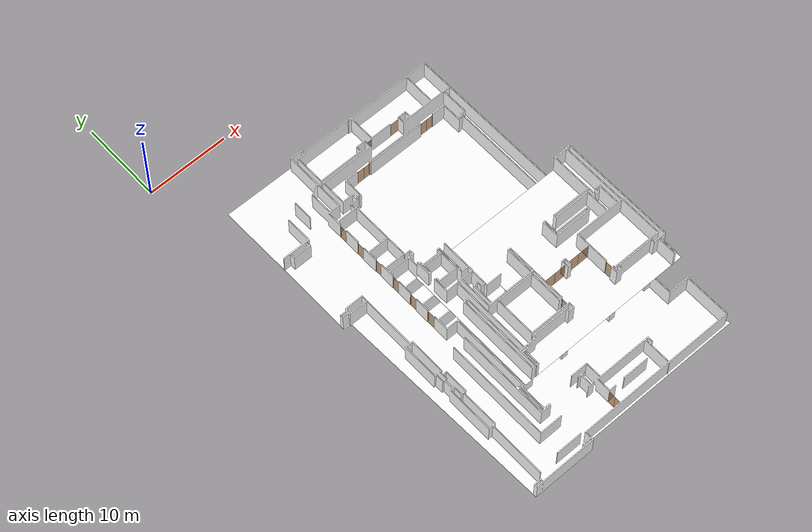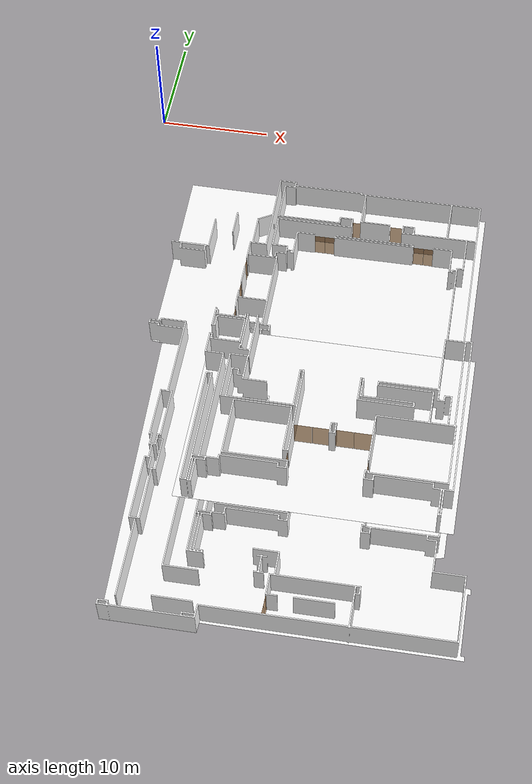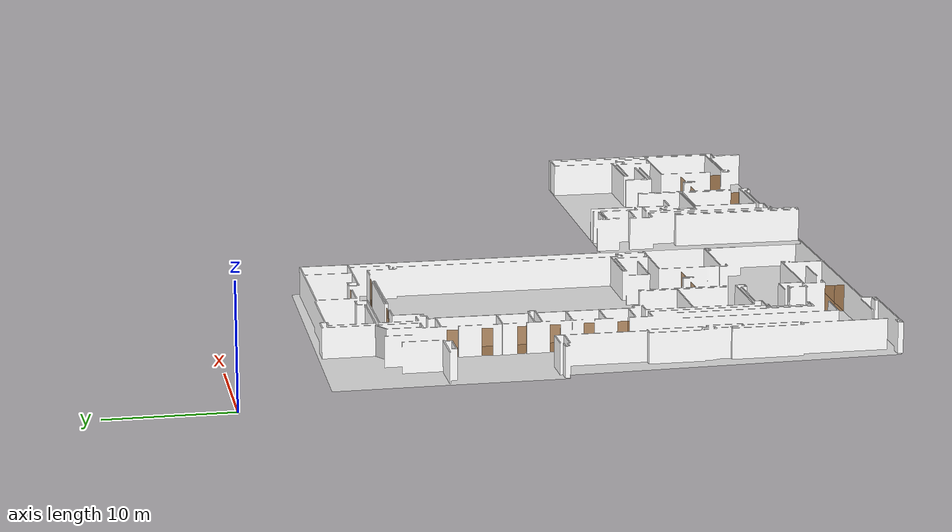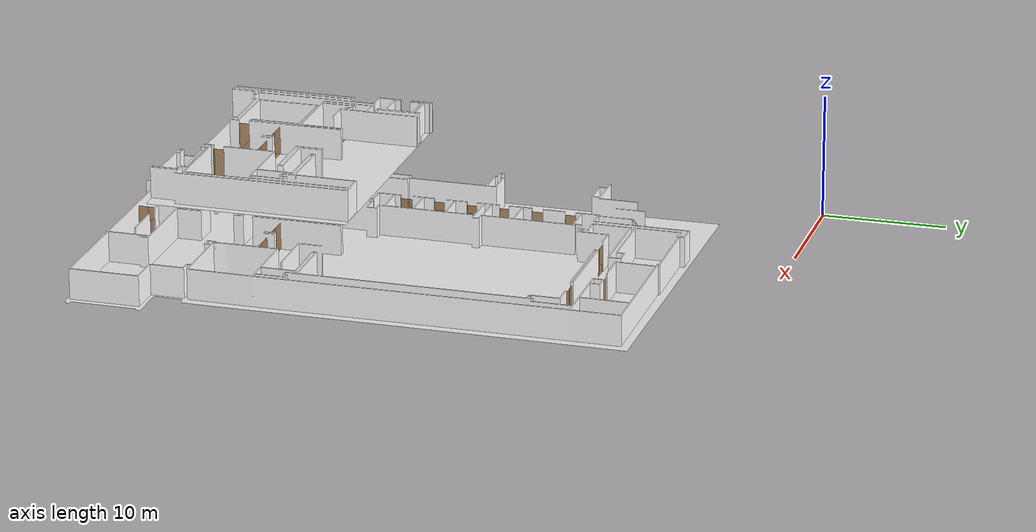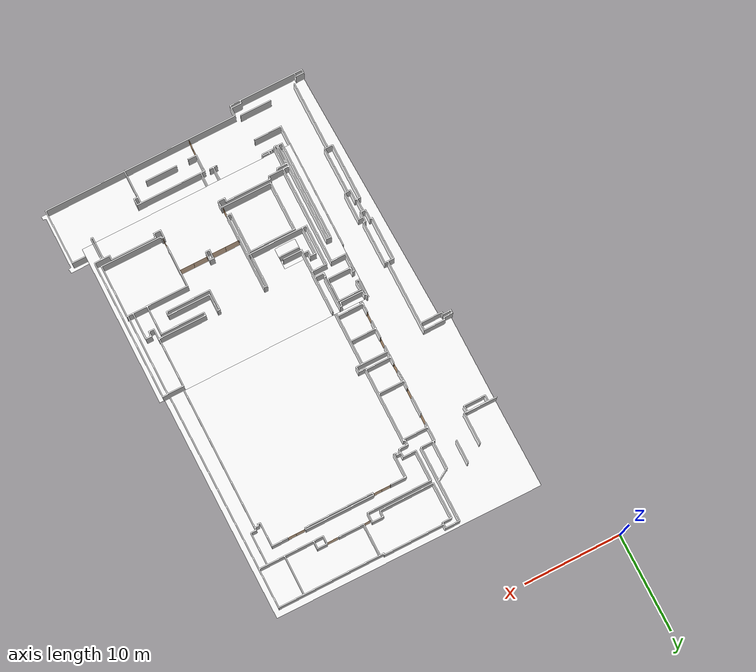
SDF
<sdf version="1.7">
 <world name="sim_world">
  <physics name="10ms" type="ode">
   <max_step_size>0.01</max_step_size>
   <real_time_factor>1.0</real_time_factor>
  </physics>
  <plugin filename="libgz-sim-physics-system.so" name="gz::sim::systems::Physics"/>
  <plugin filename="libgz-sim-user-commands-system.so" name="gz::sim::systems::UserCommands"/>
  <plugin filename="libgz-sim-scene-broadcaster-system.so" name="gz::sim::systems::SceneBroadcaster"/>
  <plugin filename="libdoor.so" name="door"/>
  <plugin filename="liblift.so" name="lift"/>
  <scene><ambient>1 1 1</ambient><background>0.8 0.8 0.8</background><grid>false</grid></scene>
  <light type="directional" name="sun">
   <pose>0 0 10 0 0 0</pose>
   <diffuse>1 1 1 1</diffuse>
   <specular>0.2 0.2 0.2 1</specular>
   <attenuation>
    <range>1000</range>
    <constant>0.09</constant>
    <linear>0.001</linear>
    <quadratic>0.001</quadratic>
   </attenuation>
   <direction>-0.5 0.1 -0.9</direction>
  </light>
  <model name="a11">
   <pose>20.60943080016063 -39.32168954483776 0.0 0 0 3.141592653589793</pose>
   <link name="right">
    <pose>0.6776144886126376 0 1.11 0 0 0</pose>
    <visual name="right_visual">
     <geometry><box><size>1.3452289772252752 0.03 2.2</size></box></geometry>
     <material>
      <ambient>0.5 0.25 0 0.6</ambient>
      <diffuse>0.5 0.25 0 0.6</diffuse>
      <pbr><metal><metalness>0.0</metalness></metal></pbr>
     </material>
    </visual>
    <collision name="right_collision">
     <geometry><box><size>1.3452289772252752 0.03 2.2</size></box></geometry>
     <surface><contact><collide_bitmask>0x02</collide_bitmask></contact></surface>
    </collision>
    <inertial>
     <mass>50.0</mass>
     <inertia><ixx>20.17041666666667</ixx><iyy>27.706837504860673</iyy><izz>7.543920838194</izz></inertia>
    </inertial>
   </link>
   <joint name="right_joint" type="revolute">
    <parent>world</parent>
    <child>right</child>
    <axis><xyz>0 0 -1</xyz><limit><lower>0</lower><upper>1.57</upper></limit></axis>
    <pose>0.6776144886126376 0 0 0 0 0</pose>
   </joint>
   <link name="left">
    <pose>-0.6776144886126376 0 1.11 0 0 0</pose>
    <visual name="left_visual">
     <geometry><box><size>1.3452289772252752 0.03 2.2</size></box></geometry>
     <material>
      <ambient>0.5 0.25 0 0.6</ambient>
      <diffuse>0.5 0.25 0 0.6</diffuse>
      <pbr><metal><metalness>0.0</metalness></metal></pbr>
     </material>
    </visual>
    <collision name="left_collision">
     <geometry><box><size>1.3452289772252752 0.03 2.2</size></box></geometry>
     <surface><contact><collide_bitmask>0x02</collide_bitmask></contact></surface>
    </collision>
    <inertial>
     <mass>50.0</mass>
     <inertia><ixx>20.17041666666667</ixx><iyy>27.706837504860673</iyy><izz>7.543920838194</izz></inertia>
    </inertial>
   </link>
   <joint name="left_joint" type="revolute">
    <parent>world</parent>
    <child>left</child>
    <axis><xyz>0 0 -1</xyz><limit><lower>-1.57</lower><upper>0</upper></limit></axis>
    <pose>-0.6776144886126376 0 0 0 0 0</pose>
   </joint>
   <plugin name="register_component" filename="libregister_component.so">
    <component name="Door">
     <v_max_door>0.5</v_max_door>
     <a_max_door>0.3</a_max_door>
     <a_nom_door>0.15</a_nom_door>
     <dx_min_door>0.01</dx_min_door>
     <f_max_door>500.0</f_max_door>
     <ros_interface>true</ros_interface>
     <door name="a11" type="DoubleSwingDoor" left_joint_name="left_joint" right_joint_name="right_joint"/>
    </component>
   </plugin>
  </model>
  <model name="a12">
   <pose>23.86846369005196 -39.305558000339644 0.0 0 0 3.141592653589793</pose>
   <link name="right">
    <pose>0.669548716363578 0 1.11 0 0 0</pose>
    <visual name="right_visual">
     <geometry><box><size>1.329097432727156 0.03 2.2</size></box></geometry>
     <material>
      <ambient>0.5 0.25 0 0.6</ambient>
      <diffuse>0.5 0.25 0 0.6</diffuse>
      <pbr><metal><metalness>0.0</metalness></metal></pbr>
     </material>
    </visual>
    <collision name="right_collision">
     <geometry><box><size>1.329097432727156 0.03 2.2</size></box></geometry>
     <surface><contact><collide_bitmask>0x02</collide_bitmask></contact></surface>
    </collision>
    <inertial>
     <mass>50.0</mass>
     <inertia><ixx>20.17041666666667</ixx><iyy>27.52708327367466</iyy><izz>7.364166607007989</izz></inertia>
    </inertial>
   </link>
   <joint name="right_joint" type="revolute">
    <parent>world</parent>
    <child>right</child>
    <axis><xyz>0 0 -1</xyz><limit><lower>0</lower><upper>1.57</upper></limit></axis>
    <pose>0.669548716363578 0 0 0 0 0</pose>
   </joint>
   <link name="left">
    <pose>-0.669548716363578 0 1.11 0 0 0</pose>
    <visual name="left_visual">
     <geometry><box><size>1.329097432727156 0.03 2.2</size></box></geometry>
     <material>
      <ambient>0.5 0.25 0 0.6</ambient>
      <diffuse>0.5 0.25 0 0.6</diffuse>
      <pbr><metal><metalness>0.0</metalness></metal></pbr>
     </material>
    </visual>
    <collision name="left_collision">
     <geometry><box><size>1.329097432727156 0.03 2.2</size></box></geometry>
     <surface><contact><collide_bitmask>0x02</collide_bitmask></contact></surface>
    </collision>
    <inertial>
     <mass>50.0</mass>
     <inertia><ixx>20.17041666666667</ixx><iyy>27.52708327367466</iyy><izz>7.364166607007989</izz></inertia>
    </inertial>
   </link>
   <joint name="left_joint" type="revolute">
    <parent>world</parent>
    <child>left</child>
    <axis><xyz>0 0 -1</xyz><limit><lower>-1.57</lower><upper>0</upper></limit></axis>
    <pose>-0.669548716363578 0 0 0 0 0</pose>
   </joint>
   <plugin name="register_component" filename="libregister_component.so">
    <component name="Door">
     <v_max_door>0.5</v_max_door>
     <a_max_door>0.3</a_max_door>
     <a_nom_door>0.15</a_nom_door>
     <dx_min_door>0.01</dx_min_door>
     <f_max_door>500.0</f_max_door>
     <ros_interface>true</ros_interface>
     <door name="a12" type="DoubleSwingDoor" left_joint_name="left_joint" right_joint_name="right_joint"/>
    </component>
   </plugin>
  </model>
  <model name="a1">
   <pose>20.398773313516152 -11.670276247472241 0.0 0 0 0.049594936428244724</pose>
   <link name="right">
    <pose>0 0 1.11 0 0 0</pose>
    <visual name="right_visual">
     <geometry><box><size>0.7358359396147773 0.03 2.2</size></box></geometry>
     <material>
      <ambient>0.5 0.25 0 0.6</ambient>
      <diffuse>0.5 0.25 0 0.6</diffuse>
      <pbr><metal><metalness>0.0</metalness></metal></pbr>
     </material>
    </visual>
    <collision name="right_collision">
     <geometry><box><size>0.7358359396147773 0.03 2.2</size></box></geometry>
     <surface><contact><collide_bitmask>0x02</collide_bitmask></contact></surface>
    </collision>
    <inertial>
     <mass>50.0</mass>
     <inertia><ixx>20.17041666666667</ixx><iyy>22.42272720845318</iyy><izz>2.2598105417865093</izz></inertia>
    </inertial>
   </link>
   <joint name="right_joint" type="prismatic">
    <parent>world</parent>
    <child>right</child>
    <axis>
     <xyz>1 0 0</xyz>
     <limit><lower>0.0</lower><upper>0.7458359396147773</upper><effort>500.0</effort></limit>
    </axis>
   </joint>
   <plugin name="register_component" filename="libregister_component.so">
    <component name="Door">
     <v_max_door>0.2</v_max_door>
     <a_max_door>0.2</a_max_door>
     <a_nom_door>0.08</a_nom_door>
     <dx_min_door>0.001</dx_min_door>
     <f_max_door>100.0</f_max_door>
     <ros_interface>true</ros_interface>
     <door name="a1" type="SlidingDoor" left_joint_name="empty_joint" right_joint_name="right_joint"/>
    </component>
   </plugin>
  </model>
  <model name="a2">
   <pose>23.973344334915918 -11.670020191210366 0.0 0 0 3.141592653589793</pose>
   <link name="right">
    <pose>0 0 1.11 0 0 0</pose>
    <visual name="right_visual">
     <geometry><box><size>1.0486902203479553 0.03 2.2</size></box></geometry>
     <material>
      <ambient>0.5 0.25 0 0.6</ambient>
      <diffuse>0.5 0.25 0 0.6</diffuse>
      <pbr><metal><metalness>0.0</metalness></metal></pbr>
     </material>
    </visual>
    <collision name="right_collision">
     <geometry><box><size>1.0486902203479553 0.03 2.2</size></box></geometry>
     <surface><contact><collide_bitmask>0x02</collide_bitmask></contact></surface>
    </collision>
    <inertial>
     <mass>50.0</mass>
     <inertia><ixx>20.17041666666667</ixx><iyy>24.74896324272268</iyy><izz>4.586046576056012</izz></inertia>
    </inertial>
   </link>
   <joint name="right_joint" type="prismatic">
    <parent>world</parent>
    <child>right</child>
    <axis>
     <xyz>1 0 0</xyz>
     <limit><lower>0.0</lower><upper>1.0586902203479553</upper><effort>500.0</effort></limit>
    </axis>
   </joint>
   <plugin name="register_component" filename="libregister_component.so">
    <component name="Door">
     <v_max_door>0.2</v_max_door>
     <a_max_door>0.2</a_max_door>
     <a_nom_door>0.08</a_nom_door>
     <dx_min_door>0.001</dx_min_door>
     <f_max_door>100.0</f_max_door>
     <ros_interface>true</ros_interface>
     <door name="a2" type="SlidingDoor" left_joint_name="empty_joint" right_joint_name="right_joint"/>
    </component>
   </plugin>
  </model>
  <model name="a4">
   <pose>17.793580088322372 -13.742181096059168 0.0 0 0 3.141592653589793</pose>
   <link name="right">
    <pose>0.4708234515224685 0 1.11 0 0 0</pose>
    <visual name="right_visual">
     <geometry><box><size>0.931646903044937 0.03 2.2</size></box></geometry>
     <material>
      <ambient>0.5 0.25 0 0.6</ambient>
      <diffuse>0.5 0.25 0 0.6</diffuse>
      <pbr><metal><metalness>0.0</metalness></metal></pbr>
     </material>
    </visual>
    <collision name="right_collision">
     <geometry><box><size>0.931646903044937 0.03 2.2</size></box></geometry>
     <surface><contact><collide_bitmask>0x02</collide_bitmask></contact></surface>
    </collision>
    <inertial>
     <mass>50.0</mass>
     <inertia><ixx>20.17041666666667</ixx><iyy>23.783191466471763</iyy><izz>3.620274799805093</izz></inertia>
    </inertial>
   </link>
   <joint name="right_joint" type="prismatic">
    <parent>world</parent>
    <child>right</child>
    <axis>
     <xyz>1 0 0</xyz>
     <limit><lower>0.0</lower><upper>0.941646903044937</upper><effort>500.0</effort></limit>
    </axis>
   </joint>
   <link name="left">
    <pose>-0.4708234515224685 0 1.11 0 0 0</pose>
    <visual name="left_visual">
     <geometry><box><size>0.931646903044937 0.03 2.2</size></box></geometry>
     <material>
      <ambient>0.5 0.25 0 0.6</ambient>
      <diffuse>0.5 0.25 0 0.6</diffuse>
      <pbr><metal><metalness>0.0</metalness></metal></pbr>
     </material>
    </visual>
    <collision name="left_collision">
     <geometry><box><size>0.931646903044937 0.03 2.2</size></box></geometry>
     <surface><contact><collide_bitmask>0x02</collide_bitmask></contact></surface>
    </collision>
    <inertial>
     <mass>50.0</mass>
     <inertia><ixx>20.17041666666667</ixx><iyy>23.783191466471763</iyy><izz>3.620274799805093</izz></inertia>
    </inertial>
   </link>
   <joint name="left_joint" type="prismatic">
    <parent>world</parent>
    <child>left</child>
    <axis>
     <xyz>1 0 0</xyz>
     <limit><lower>-0.941646903044937</lower><upper>0.0</upper><effort>500.0</effort></limit>
    </axis>
   </joint>
   <plugin name="register_component" filename="libregister_component.so">
    <component name="Door">
     <v_max_door>0.2</v_max_door>
     <a_max_door>0.2</a_max_door>
     <a_nom_door>0.08</a_nom_door>
     <dx_min_door>0.001</dx_min_door>
     <f_max_door>100.0</f_max_door>
     <ros_interface>true</ros_interface>
     <door name="a4" type="DoubleSlidingDoor" left_joint_name="left_joint" right_joint_name="right_joint"/>
    </component>
   </plugin>
  </model>
  <model name="c1">
   <pose>26.704619663456896 -13.72830284666555 0.0 0 0 0.0</pose>
   <link name="right">
    <pose>0.4459475856813233 0 1.11 0 0 0</pose>
    <visual name="right_visual">
     <geometry><box><size>0.8818951713626466 0.03 2.2</size></box></geometry>
     <material>
      <ambient>0.5 0.25 0 0.6</ambient>
      <diffuse>0.5 0.25 0 0.6</diffuse>
      <pbr><metal><metalness>0.0</metalness></metal></pbr>
     </material>
    </visual>
    <collision name="right_collision">
     <geometry><box><size>0.8818951713626466 0.03 2.2</size></box></geometry>
     <surface><contact><collide_bitmask>0x02</collide_bitmask></contact></surface>
    </collision>
    <inertial>
     <mass>50.0</mass>
     <inertia><ixx>20.17041666666667</ixx><iyy>23.407246221969803</iyy><izz>3.244329555303133</izz></inertia>
    </inertial>
   </link>
   <joint name="right_joint" type="prismatic">
    <parent>world</parent>
    <child>right</child>
    <axis>
     <xyz>1 0 0</xyz>
     <limit><lower>0.0</lower><upper>0.8918951713626466</upper><effort>500.0</effort></limit>
    </axis>
   </joint>
   <link name="left">
    <pose>-0.4459475856813233 0 1.11 0 0 0</pose>
    <visual name="left_visual">
     <geometry><box><size>0.8818951713626466 0.03 2.2</size></box></geometry>
     <material>
      <ambient>0.5 0.25 0 0.6</ambient>
      <diffuse>0.5 0.25 0 0.6</diffuse>
      <pbr><metal><metalness>0.0</metalness></metal></pbr>
     </material>
    </visual>
    <collision name="left_collision">
     <geometry><box><size>0.8818951713626466 0.03 2.2</size></box></geometry>
     <surface><contact><collide_bitmask>0x02</collide_bitmask></contact></surface>
    </collision>
    <inertial>
     <mass>50.0</mass>
     <inertia><ixx>20.17041666666667</ixx><iyy>23.407246221969803</iyy><izz>3.244329555303133</izz></inertia>
    </inertial>
   </link>
   <joint name="left_joint" type="prismatic">
    <parent>world</parent>
    <child>left</child>
    <axis>
     <xyz>1 0 0</xyz>
     <limit><lower>-0.8918951713626466</lower><upper>0.0</upper><effort>500.0</effort></limit>
    </axis>
   </joint>
   <plugin name="register_component" filename="libregister_component.so">
    <component name="Door">
     <v_max_door>0.2</v_max_door>
     <a_max_door>0.2</a_max_door>
     <a_nom_door>0.08</a_nom_door>
     <dx_min_door>0.001</dx_min_door>
     <f_max_door>100.0</f_max_door>
     <ros_interface>true</ros_interface>
     <door name="c1" type="DoubleSlidingDoor" left_joint_name="left_joint" right_joint_name="right_joint"/>
    </component>
   </plugin>
  </model>
  <model name="a44">
   <pose>18.740911440380934 -50.55692620338455 0.0 0 0 1.5337740013326813</pose>
   <link name="right">
    <pose>0.42890648406973847 0 1.11 0 0 0</pose>
    <visual name="right_visual">
     <geometry><box><size>0.8478129681394769 0.03 2.2</size></box></geometry>
     <material>
      <ambient>0.5 0.25 0 0.6</ambient>
      <diffuse>0.5 0.25 0 0.6</diffuse>
      <pbr><metal><metalness>0.0</metalness></metal></pbr>
     </material>
    </visual>
    <collision name="right_collision">
     <geometry><box><size>0.8478129681394769 0.03 2.2</size></box></geometry>
     <surface><contact><collide_bitmask>0x02</collide_bitmask></contact></surface>
    </collision>
    <inertial>
     <mass>50.0</mass>
     <inertia><ixx>20.17041666666667</ixx><iyy>23.161611787272793</iyy><izz>2.9986951206061243</izz></inertia>
    </inertial>
   </link>
   <joint name="right_joint" type="revolute">
    <parent>world</parent>
    <child>right</child>
    <axis><xyz>0 0 1</xyz><limit><lower>0</lower><upper>1.57</upper></limit></axis>
    <pose>0.42890648406973847 0 0 0 0 0</pose>
   </joint>
   <link name="left">
    <pose>-0.42890648406973847 0 1.11 0 0 0</pose>
    <visual name="left_visual">
     <geometry><box><size>0.8478129681394769 0.03 2.2</size></box></geometry>
     <material>
      <ambient>0.5 0.25 0 0.6</ambient>
      <diffuse>0.5 0.25 0 0.6</diffuse>
      <pbr><metal><metalness>0.0</metalness></metal></pbr>
     </material>
    </visual>
    <collision name="left_collision">
     <geometry><box><size>0.8478129681394769 0.03 2.2</size></box></geometry>
     <surface><contact><collide_bitmask>0x02</collide_bitmask></contact></surface>
    </collision>
    <inertial>
     <mass>50.0</mass>
     <inertia><ixx>20.17041666666667</ixx><iyy>23.161611787272793</iyy><izz>2.9986951206061243</izz></inertia>
    </inertial>
   </link>
   <joint name="left_joint" type="revolute">
    <parent>world</parent>
    <child>left</child>
    <axis><xyz>0 0 1</xyz><limit><lower>-1.57</lower><upper>0</upper></limit></axis>
    <pose>-0.42890648406973847 0 0 0 0 0</pose>
   </joint>
   <plugin name="register_component" filename="libregister_component.so">
    <component name="Door">
     <v_max_door>0.5</v_max_door>
     <a_max_door>0.3</a_max_door>
     <a_nom_door>0.15</a_nom_door>
     <dx_min_door>0.01</dx_min_door>
     <f_max_door>500.0</f_max_door>
     <ros_interface>true</ros_interface>
     <door name="a44" type="DoubleSwingDoor" left_joint_name="left_joint" right_joint_name="right_joint"/>
    </component>
   </plugin>
  </model>
  <model name="a10">
   <pose>11.37243160365936 -31.38000216028304 0.0 0 0 -1.5546839771611423</pose>
   <link name="right">
    <pose>0 0 1.11 0 0 0</pose>
    <visual name="right_visual">
     <geometry><box><size>1.070697700859395 0.03 2.2</size></box></geometry>
     <material>
      <ambient>0.5 0.25 0 0.6</ambient>
      <diffuse>0.5 0.25 0 0.6</diffuse>
      <pbr><metal><metalness>0.0</metalness></metal></pbr>
     </material>
    </visual>
    <collision name="right_collision">
     <geometry><box><size>1.070697700859395 0.03 2.2</size></box></geometry>
     <surface><contact><collide_bitmask>0x02</collide_bitmask></contact></surface>
    </collision>
    <inertial>
     <mass>50.0</mass>
     <inertia><ixx>20.17041666666667</ixx><iyy>24.943306527606648</iyy><izz>4.780389860939977</izz></inertia>
    </inertial>
   </link>
   <joint name="right_joint" type="prismatic">
    <parent>world</parent>
    <child>right</child>
    <axis>
     <xyz>1 0 0</xyz>
     <limit><lower>0.0</lower><upper>1.080697700859395</upper><effort>500.0</effort></limit>
    </axis>
   </joint>
   <plugin name="register_component" filename="libregister_component.so">
    <component name="Door">
     <v_max_door>0.2</v_max_door>
     <a_max_door>0.2</a_max_door>
     <a_nom_door>0.08</a_nom_door>
     <dx_min_door>0.001</dx_min_door>
     <f_max_door>100.0</f_max_door>
     <ros_interface>true</ros_interface>
     <door name="a10" type="SlidingDoor" left_joint_name="empty_joint" right_joint_name="right_joint"/>
    </component>
   </plugin>
  </model>
  <model name="a9">
   <pose>11.37517140566142 -28.64304238272844 0.0 0 0 -1.5941304712731772</pose>
   <link name="right">
    <pose>0 0 1.11 0 0 0</pose>
    <visual name="right_visual">
     <geometry><box><size>0.9711162048220927 0.03 2.2</size></box></geometry>
     <material>
      <ambient>0.5 0.25 0 0.6</ambient>
      <diffuse>0.5 0.25 0 0.6</diffuse>
      <pbr><metal><metalness>0.0</metalness></metal></pbr>
     </material>
    </visual>
    <collision name="right_collision">
     <geometry><box><size>0.9711162048220927 0.03 2.2</size></box></geometry>
     <surface><contact><collide_bitmask>0x02</collide_bitmask></contact></surface>
    </collision>
    <inertial>
     <mass>50.0</mass>
     <inertia><ixx>20.17041666666667</ixx><iyy>24.09611118028361</iyy><izz>3.933194513616937</izz></inertia>
    </inertial>
   </link>
   <joint name="right_joint" type="prismatic">
    <parent>world</parent>
    <child>right</child>
    <axis>
     <xyz>1 0 0</xyz>
     <limit><lower>0.0</lower><upper>0.9811162048220927</upper><effort>500.0</effort></limit>
    </axis>
   </joint>
   <plugin name="register_component" filename="libregister_component.so">
    <component name="Door">
     <v_max_door>0.2</v_max_door>
     <a_max_door>0.2</a_max_door>
     <a_nom_door>0.08</a_nom_door>
     <dx_min_door>0.001</dx_min_door>
     <f_max_door>100.0</f_max_door>
     <ros_interface>true</ros_interface>
     <door name="a9" type="SlidingDoor" left_joint_name="empty_joint" right_joint_name="right_joint"/>
    </component>
   </plugin>
  </model>
  <model name="a8">
   <pose>11.386028191164916 -25.962235743403006 0.0 0 0 -1.5695227242939735</pose>
   <link name="right">
    <pose>0 0 1.11 0 0 0</pose>
    <visual name="right_visual">
     <geometry><box><size>0.9148247567018175 0.03 2.2</size></box></geometry>
     <material>
      <ambient>0.5 0.25 0 0.6</ambient>
      <diffuse>0.5 0.25 0 0.6</diffuse>
      <pbr><metal><metalness>0.0</metalness></metal></pbr>
     </material>
    </visual>
    <collision name="right_collision">
     <geometry><box><size>0.9148247567018175 0.03 2.2</size></box></geometry>
     <surface><contact><collide_bitmask>0x02</collide_bitmask></contact></surface>
    </collision>
    <inertial>
     <mass>50.0</mass>
     <inertia><ixx>20.17041666666667</ixx><iyy>23.65376806447725</iyy><izz>3.490851397810582</izz></inertia>
    </inertial>
   </link>
   <joint name="right_joint" type="prismatic">
    <parent>world</parent>
    <child>right</child>
    <axis>
     <xyz>1 0 0</xyz>
     <limit><lower>0.0</lower><upper>0.9248247567018175</upper><effort>500.0</effort></limit>
    </axis>
   </joint>
   <plugin name="register_component" filename="libregister_component.so">
    <component name="Door">
     <v_max_door>0.2</v_max_door>
     <a_max_door>0.2</a_max_door>
     <a_nom_door>0.08</a_nom_door>
     <dx_min_door>0.001</dx_min_door>
     <f_max_door>100.0</f_max_door>
     <ros_interface>true</ros_interface>
     <door name="a8" type="SlidingDoor" left_joint_name="empty_joint" right_joint_name="right_joint"/>
    </component>
   </plugin>
  </model>
  <model name="a7">
   <pose>11.37852574269198 -23.302707379439372 0.0 0 0 -1.5547549221482515</pose>
   <link name="right">
    <pose>0 0 1.11 0 0 0</pose>
    <visual name="right_visual">
     <geometry><box><size>0.8519962824060997 0.03 2.2</size></box></geometry>
     <material>
      <ambient>0.5 0.25 0 0.6</ambient>
      <diffuse>0.5 0.25 0 0.6</diffuse>
      <pbr><metal><metalness>0.0</metalness></metal></pbr>
     </material>
    </visual>
    <collision name="right_collision">
     <geometry><box><size>0.8519962824060997 0.03 2.2</size></box></geometry>
     <surface><contact><collide_bitmask>0x02</collide_bitmask></contact></surface>
    </collision>
    <inertial>
     <mass>50.0</mass>
     <inertia><ixx>20.17041666666667</ixx><iyy>23.191240271807565</iyy><izz>3.0283236051408937</izz></inertia>
    </inertial>
   </link>
   <joint name="right_joint" type="prismatic">
    <parent>world</parent>
    <child>right</child>
    <axis>
     <xyz>1 0 0</xyz>
     <limit><lower>0.0</lower><upper>0.8619962824060997</upper><effort>500.0</effort></limit>
    </axis>
   </joint>
   <plugin name="register_component" filename="libregister_component.so">
    <component name="Door">
     <v_max_door>0.2</v_max_door>
     <a_max_door>0.2</a_max_door>
     <a_nom_door>0.08</a_nom_door>
     <dx_min_door>0.001</dx_min_door>
     <f_max_door>100.0</f_max_door>
     <ros_interface>true</ros_interface>
     <door name="a7" type="SlidingDoor" left_joint_name="empty_joint" right_joint_name="right_joint"/>
    </component>
   </plugin>
  </model>
  <model name="a6">
   <pose>11.345264034274432 -20.576220302995452 0.0 0 0 -1.5931443542003207</pose>
   <link name="right">
    <pose>0 0 1.11 0 0 0</pose>
    <visual name="right_visual">
     <geometry><box><size>1.000650375600777 0.03 2.2</size></box></geometry>
     <material>
      <ambient>0.5 0.25 0 0.6</ambient>
      <diffuse>0.5 0.25 0 0.6</diffuse>
      <pbr><metal><metalness>0.0</metalness></metal></pbr>
     </material>
    </visual>
    <collision name="right_collision">
     <geometry><box><size>1.000650375600777 0.03 2.2</size></box></geometry>
     <surface><contact><collide_bitmask>0x02</collide_bitmask></contact></surface>
    </collision>
    <inertial>
     <mass>50.0</mass>
     <inertia><ixx>20.17041666666667</ixx><iyy>24.338754892458237</iyy><izz>4.1758382257915665</izz></inertia>
    </inertial>
   </link>
   <joint name="right_joint" type="prismatic">
    <parent>world</parent>
    <child>right</child>
    <axis>
     <xyz>1 0 0</xyz>
     <limit><lower>0.0</lower><upper>1.010650375600777</upper><effort>500.0</effort></limit>
    </axis>
   </joint>
   <plugin name="register_component" filename="libregister_component.so">
    <component name="Door">
     <v_max_door>0.2</v_max_door>
     <a_max_door>0.2</a_max_door>
     <a_nom_door>0.08</a_nom_door>
     <dx_min_door>0.001</dx_min_door>
     <f_max_door>100.0</f_max_door>
     <ros_interface>true</ros_interface>
     <door name="a6" type="SlidingDoor" left_joint_name="empty_joint" right_joint_name="right_joint"/>
    </component>
   </plugin>
  </model>
  <model name="a5">
   <pose>11.332256376171188 -17.801850705580932 0.0 0 0 -1.603912979629423</pose>
   <link name="right">
    <pose>0 0 1.11 0 0 0</pose>
    <visual name="right_visual">
     <geometry><box><size>0.8917100325265682 0.03 2.2</size></box></geometry>
     <material>
      <ambient>0.5 0.25 0 0.6</ambient>
      <diffuse>0.5 0.25 0 0.6</diffuse>
      <pbr><metal><metalness>0.0</metalness></metal></pbr>
     </material>
    </visual>
    <collision name="right_collision">
     <geometry><box><size>0.8917100325265682 0.03 2.2</size></box></geometry>
     <surface><contact><collide_bitmask>0x02</collide_bitmask></contact></surface>
    </collision>
    <inertial>
     <mass>50.0</mass>
     <inertia><ixx>20.17041666666667</ixx><iyy>23.47977825878556</iyy><izz>3.3168615921188893</izz></inertia>
    </inertial>
   </link>
   <joint name="right_joint" type="prismatic">
    <parent>world</parent>
    <child>right</child>
    <axis>
     <xyz>1 0 0</xyz>
     <limit><lower>0.0</lower><upper>0.9017100325265682</upper><effort>500.0</effort></limit>
    </axis>
   </joint>
   <plugin name="register_component" filename="libregister_component.so">
    <component name="Door">
     <v_max_door>0.2</v_max_door>
     <a_max_door>0.2</a_max_door>
     <a_nom_door>0.08</a_nom_door>
     <dx_min_door>0.001</dx_min_door>
     <f_max_door>100.0</f_max_door>
     <ros_interface>true</ros_interface>
     <door name="a5" type="SlidingDoor" left_joint_name="empty_joint" right_joint_name="right_joint"/>
    </component>
   </plugin>
  </model>
  <include><name>room_b1_L1</name><uri>model://room_b1_L1</uri></include>
  <model name="b3">
   <pose>20.691641997598953 -39.208773794073394 8.0 0 0 3.1395549819910915</pose>
   <link name="right">
    <pose>0.7064888370421526 0 1.11 0 0 0</pose>
    <visual name="right_visual">
     <geometry><box><size>1.4029776740843052 0.03 2.2</size></box></geometry>
     <material>
      <ambient>0.5 0.25 0 0.6</ambient>
      <diffuse>0.5 0.25 0 0.6</diffuse>
      <pbr><metal><metalness>0.0</metalness></metal></pbr>
     </material>
    </visual>
    <collision name="right_collision">
     <geometry><box><size>1.4029776740843052 0.03 2.2</size></box></geometry>
     <surface><contact><collide_bitmask>0x02</collide_bitmask></contact></surface>
    </collision>
    <inertial>
     <mass>50.0</mass>
     <inertia><ixx>20.17041666666667</ixx><iyy>28.36810980824587</iyy><izz>8.205193141579196</izz></inertia>
    </inertial>
   </link>
   <joint name="right_joint" type="revolute">
    <parent>world</parent>
    <child>right</child>
    <axis><xyz>0 0 -1</xyz><limit><lower>0</lower><upper>1.57</upper></limit></axis>
    <pose>0.7064888370421526 0 0 0 0 0</pose>
   </joint>
   <link name="left">
    <pose>-0.7064888370421526 0 1.11 0 0 0</pose>
    <visual name="left_visual">
     <geometry><box><size>1.4029776740843052 0.03 2.2</size></box></geometry>
     <material>
      <ambient>0.5 0.25 0 0.6</ambient>
      <diffuse>0.5 0.25 0 0.6</diffuse>
      <pbr><metal><metalness>0.0</metalness></metal></pbr>
     </material>
    </visual>
    <collision name="left_collision">
     <geometry><box><size>1.4029776740843052 0.03 2.2</size></box></geometry>
     <surface><contact><collide_bitmask>0x02</collide_bitmask></contact></surface>
    </collision>
    <inertial>
     <mass>50.0</mass>
     <inertia><ixx>20.17041666666667</ixx><iyy>28.36810980824587</iyy><izz>8.205193141579196</izz></inertia>
    </inertial>
   </link>
   <joint name="left_joint" type="revolute">
    <parent>world</parent>
    <child>left</child>
    <axis><xyz>0 0 -1</xyz><limit><lower>-1.57</lower><upper>0</upper></limit></axis>
    <pose>-0.7064888370421526 0 0 0 0 0</pose>
   </joint>
   <plugin name="register_component" filename="libregister_component.so">
    <component name="Door">
     <v_max_door>0.5</v_max_door>
     <a_max_door>0.3</a_max_door>
     <a_nom_door>0.15</a_nom_door>
     <dx_min_door>0.01</dx_min_door>
     <f_max_door>500.0</f_max_door>
     <ros_interface>true</ros_interface>
     <door name="b3" type="DoubleSwingDoor" left_joint_name="left_joint" right_joint_name="right_joint"/>
    </component>
   </plugin>
  </model>
  <model name="b4">
   <pose>23.92194838881695 -39.1903328070905 8.0 0 0 3.139554981991089</pose>
   <link name="right">
    <pose>0.7044057095331281 0 1.11 0 0 0</pose>
    <visual name="right_visual">
     <geometry><box><size>1.3988114190662562 0.03 2.2</size></box></geometry>
     <material>
      <ambient>0.5 0.25 0 0.6</ambient>
      <diffuse>0.5 0.25 0 0.6</diffuse>
      <pbr><metal><metalness>0.0</metalness></metal></pbr>
     </material>
    </visual>
    <collision name="right_collision">
     <geometry><box><size>1.3988114190662562 0.03 2.2</size></box></geometry>
     <surface><contact><collide_bitmask>0x02</collide_bitmask></contact></surface>
    </collision>
    <inertial>
     <mass>50.0</mass>
     <inertia><ixx>20.17041666666667</ixx><iyy>28.319472442125644</iyy><izz>8.156555775458973</izz></inertia>
    </inertial>
   </link>
   <joint name="right_joint" type="revolute">
    <parent>world</parent>
    <child>right</child>
    <axis><xyz>0 0 -1</xyz><limit><lower>0</lower><upper>1.57</upper></limit></axis>
    <pose>0.7044057095331281 0 0 0 0 0</pose>
   </joint>
   <link name="left">
    <pose>-0.7044057095331281 0 1.11 0 0 0</pose>
    <visual name="left_visual">
     <geometry><box><size>1.3988114190662562 0.03 2.2</size></box></geometry>
     <material>
      <ambient>0.5 0.25 0 0.6</ambient>
      <diffuse>0.5 0.25 0 0.6</diffuse>
      <pbr><metal><metalness>0.0</metalness></metal></pbr>
     </material>
    </visual>
    <collision name="left_collision">
     <geometry><box><size>1.3988114190662562 0.03 2.2</size></box></geometry>
     <surface><contact><collide_bitmask>0x02</collide_bitmask></contact></surface>
    </collision>
    <inertial>
     <mass>50.0</mass>
     <inertia><ixx>20.17041666666667</ixx><iyy>28.319472442125644</iyy><izz>8.156555775458973</izz></inertia>
    </inertial>
   </link>
   <joint name="left_joint" type="revolute">
    <parent>world</parent>
    <child>left</child>
    <axis><xyz>0 0 -1</xyz><limit><lower>-1.57</lower><upper>0</upper></limit></axis>
    <pose>-0.7044057095331281 0 0 0 0 0</pose>
   </joint>
   <plugin name="register_component" filename="libregister_component.so">
    <component name="Door">
     <v_max_door>0.5</v_max_door>
     <a_max_door>0.3</a_max_door>
     <a_nom_door>0.15</a_nom_door>
     <dx_min_door>0.01</dx_min_door>
     <f_max_door>500.0</f_max_door>
     <ros_interface>true</ros_interface>
     <door name="b4" type="DoubleSwingDoor" left_joint_name="left_joint" right_joint_name="right_joint"/>
    </component>
   </plugin>
  </model>
  <model name="b6">
   <pose>25.36146367563989 -42.070868380911854 8.0 0 0 1.5687586551961945</pose>
   <link name="right">
    <pose>0 0 1.11 0 0 0</pose>
    <visual name="right_visual">
     <geometry><box><size>0.9055473990280852 0.03 2.2</size></box></geometry>
     <material>
      <ambient>0.5 0.25 0 0.6</ambient>
      <diffuse>0.5 0.25 0 0.6</diffuse>
      <pbr><metal><metalness>0.0</metalness></metal></pbr>
     </material>
    </visual>
    <collision name="right_collision">
     <geometry><box><size>0.9055473990280852 0.03 2.2</size></box></geometry>
     <surface><contact><collide_bitmask>0x02</collide_bitmask></contact></surface>
    </collision>
    <inertial>
     <mass>50.0</mass>
     <inertia><ixx>20.17041666666667</ixx><iyy>23.583400382860546</iyy><izz>3.420483716193876</izz></inertia>
    </inertial>
   </link>
   <joint name="right_joint" type="prismatic">
    <parent>world</parent>
    <child>right</child>
    <axis>
     <xyz>1 0 0</xyz>
     <limit><lower>0.0</lower><upper>0.9155473990280852</upper><effort>500.0</effort></limit>
    </axis>
   </joint>
   <plugin name="register_component" filename="libregister_component.so">
    <component name="Door">
     <v_max_door>0.2</v_max_door>
     <a_max_door>0.2</a_max_door>
     <a_nom_door>0.08</a_nom_door>
     <dx_min_door>0.001</dx_min_door>
     <f_max_door>100.0</f_max_door>
     <ros_interface>true</ros_interface>
     <door name="b6" type="SlidingDoor" left_joint_name="empty_joint" right_joint_name="right_joint"/>
    </component>
   </plugin>
  </model>
  <model name="b5">
   <pose>19.222656644538077 -42.14538810969267 8.0 0 0 1.5687586551961936</pose>
   <link name="right">
    <pose>0 0 1.11 0 0 0</pose>
    <visual name="right_visual">
     <geometry><box><size>0.8903225658757069 0.03 2.2</size></box></geometry>
     <material>
      <ambient>0.5 0.25 0 0.6</ambient>
      <diffuse>0.5 0.25 0 0.6</diffuse>
      <pbr><metal><metalness>0.0</metalness></metal></pbr>
     </material>
    </visual>
    <collision name="right_collision">
     <geometry><box><size>0.8903225658757069 0.03 2.2</size></box></geometry>
     <surface><contact><collide_bitmask>0x02</collide_bitmask></contact></surface>
    </collision>
    <inertial>
     <mass>50.0</mass>
     <inertia><ixx>20.17041666666667</ixx><iyy>23.469476130447934</iyy><izz>3.3065594637812605</izz></inertia>
    </inertial>
   </link>
   <joint name="right_joint" type="revolute">
    <parent>world</parent>
    <child>right</child>
    <axis><xyz>0 0 1</xyz><limit><lower>0</lower><upper>1.57</upper></limit></axis>
    <pose>0.45016128293785346 0 0 0 0 0</pose>
   </joint>
   <plugin name="register_component" filename="libregister_component.so">
    <component name="Door">
     <v_max_door>0.5</v_max_door>
     <a_max_door>0.3</a_max_door>
     <a_nom_door>0.15</a_nom_door>
     <dx_min_door>0.01</dx_min_door>
     <f_max_door>500.0</f_max_door>
     <ros_interface>true</ros_interface>
     <door name="b5" type="SwingDoor" left_joint_name="empty_joint" right_joint_name="right_joint"/>
    </component>
   </plugin>
  </model>
  <include><name>room_b1_L2</name><uri>model://room_b1_L2</uri><pose>0 0 8.0 0 0 0</pose></include>
  <rmf_charger_waypoints name="charger_waypoints"/>
 </world>
</sdf>

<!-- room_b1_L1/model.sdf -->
<sdf version="1.7">
  <model name="room_b1_L1">
    <static>true</static>
    <link name="floor_1">
      <visual name="visual">
        <geometry>
          <mesh>
            <uri>model://room_b1_L1/meshes/floor_1.obj</uri>
          </mesh>
        </geometry>
        <material>
          <diffuse>1.0 1.0 1.0</diffuse>
          <specular>0.1 0.1 0.1</specular>
          <pbr>
            <metal>
              <metalness>0.0</metalness>
              <albedo_map>model://room_b1_L1/meshes/blue_linoleum.png</albedo_map>
            </metal>
          </pbr>
          <script>
            <uri>model://room_b1_L1/meshes/</uri>
            <name>floor_1_Diffuse</name>
          </script>
        </material>
      </visual>
      <collision name="collision">
        <geometry>
          <mesh>
            <uri>model://room_b1_L1/meshes/floor_1.obj</uri>
          </mesh>
        </geometry>
        <surface>
          <contact>
            <collide_bitmask>0x01</collide_bitmask>
          </contact>
        </surface>
      </collision>
    </link>
    <link name="wall_1">
      <visual name="wall_1">
        <geometry>
          <mesh>
            <uri>model://room_b1_L1/meshes/wall_1.obj</uri>
          </mesh>
        </geometry>
        <transparency>0.0</transparency>
        <material>
          <diffuse>1.0 1.0 1.0</diffuse>
          <specular>0.1 0.1 0.1</specular>
          <pbr>
            <metal>
              <metalness>0.0</metalness>
              <albedo_map>model://room_b1_L1/meshes/default.png</albedo_map>
            </metal>
          </pbr>
          <script>
            <uri>model://room_b1_L1/meshes/</uri>
            <name>wall_1_Diffuse</name>
          </script>
        </material>
      </visual>
      <collision name="collision">
        <geometry>
          <mesh>
            <uri>model://room_b1_L1/meshes/wall_1.obj</uri>
          </mesh>
        </geometry>
        <surface>
          <contact>
            <collide_bitmask>0x01</collide_bitmask>
          </contact>
        </surface>
      </collision>
      <pose>4.332607766998384 -52.54721813336778 0 0 0 0</pose>
    </link>
  </model>
</sdf>

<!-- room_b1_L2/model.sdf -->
<sdf version="1.7">
  <model name="room_b1_L2">
    <static>true</static>
    <link name="floor_1">
      <visual name="visual">
        <geometry>
          <mesh>
            <uri>model://room_b1_L2/meshes/floor_1.obj</uri>
          </mesh>
        </geometry>
        <material>
          <diffuse>1.0 1.0 1.0</diffuse>
          <specular>0.1 0.1 0.1</specular>
          <pbr>
            <metal>
              <metalness>0.0</metalness>
              <albedo_map>model://room_b1_L2/meshes/blue_linoleum.png</albedo_map>
            </metal>
          </pbr>
          <script>
            <uri>model://room_b1_L2/meshes/</uri>
            <name>floor_1_Diffuse</name>
          </script>
        </material>
      </visual>
      <collision name="collision">
        <geometry>
          <mesh>
            <uri>model://room_b1_L2/meshes/floor_1.obj</uri>
          </mesh>
        </geometry>
        <surface>
          <contact>
            <collide_bitmask>0x01</collide_bitmask>
          </contact>
        </surface>
      </collision>
    </link>
    <link name="wall_1">
      <visual name="wall_1">
        <geometry>
          <mesh>
            <uri>model://room_b1_L2/meshes/wall_1.obj</uri>
          </mesh>
        </geometry>
        <transparency>0.0</transparency>
        <material>
          <diffuse>1.0 1.0 1.0</diffuse>
          <specular>0.1 0.1 0.1</specular>
          <pbr>
            <metal>
              <metalness>0.0</metalness>
              <albedo_map>model://room_b1_L2/meshes/default.png</albedo_map>
            </metal>
          </pbr>
          <script>
            <uri>model://room_b1_L2/meshes/</uri>
            <name>wall_1_Diffuse</name>
          </script>
        </material>
      </visual>
      <collision name="collision">
        <geometry>
          <mesh>
            <uri>model://room_b1_L2/meshes/wall_1.obj</uri>
          </mesh>
        </geometry>
        <surface>
          <contact>
            <collide_bitmask>0x01</collide_bitmask>
          </contact>
        </surface>
      </collision>
      <pose>11.246215744088744 -45.54064143812437 0 0 0 0</pose>
    </link>
  </model>
</sdf>
